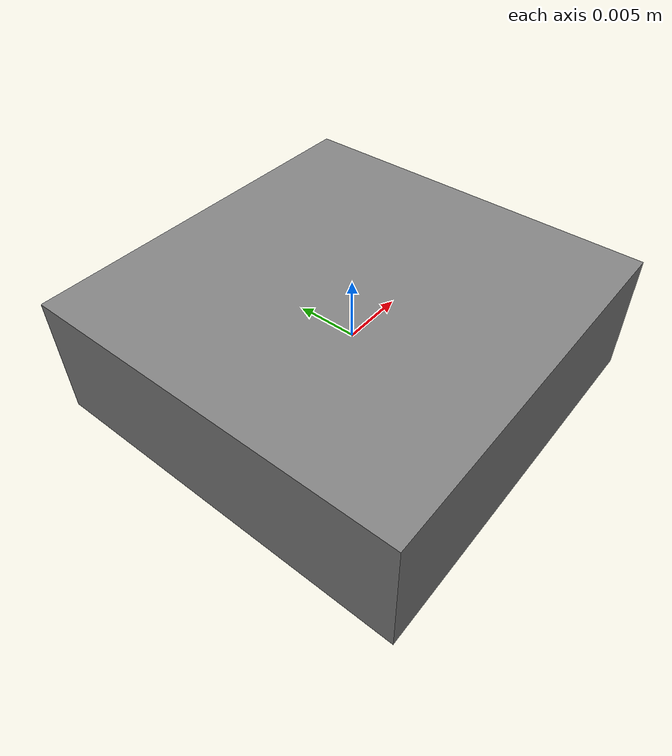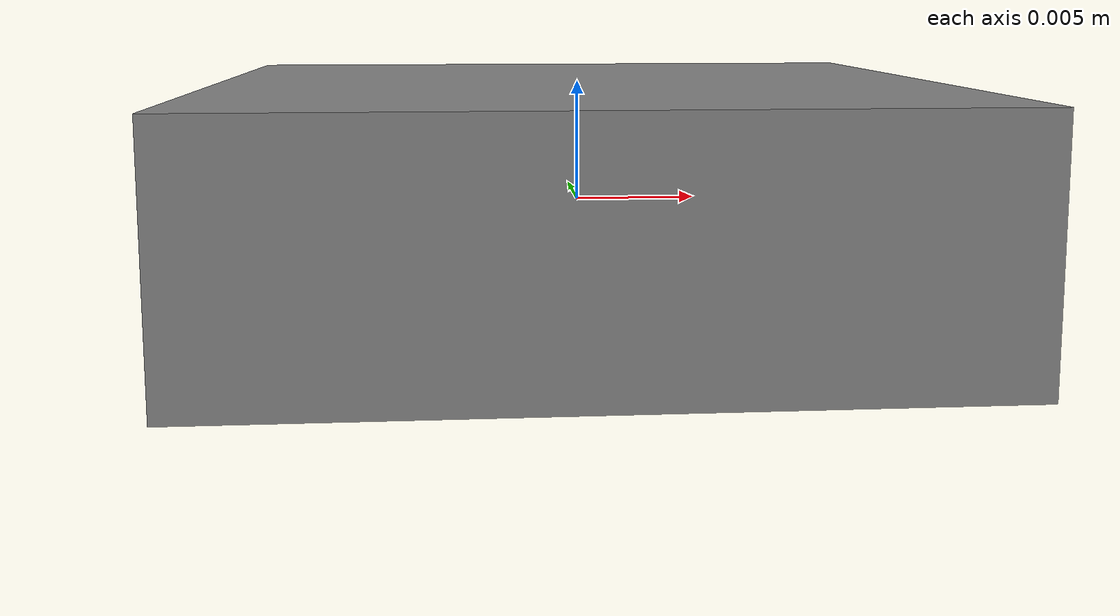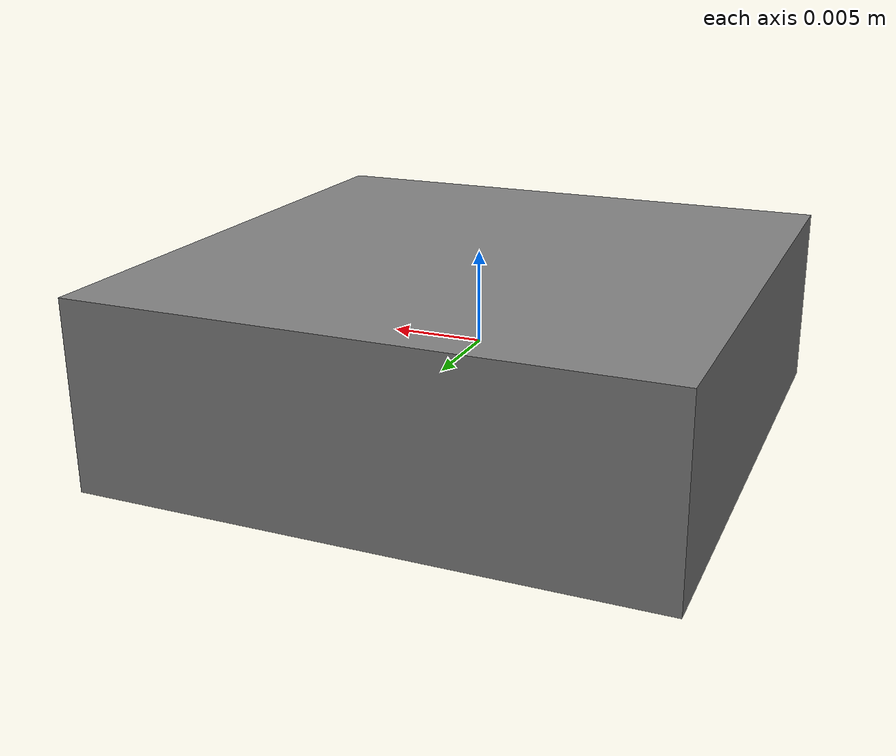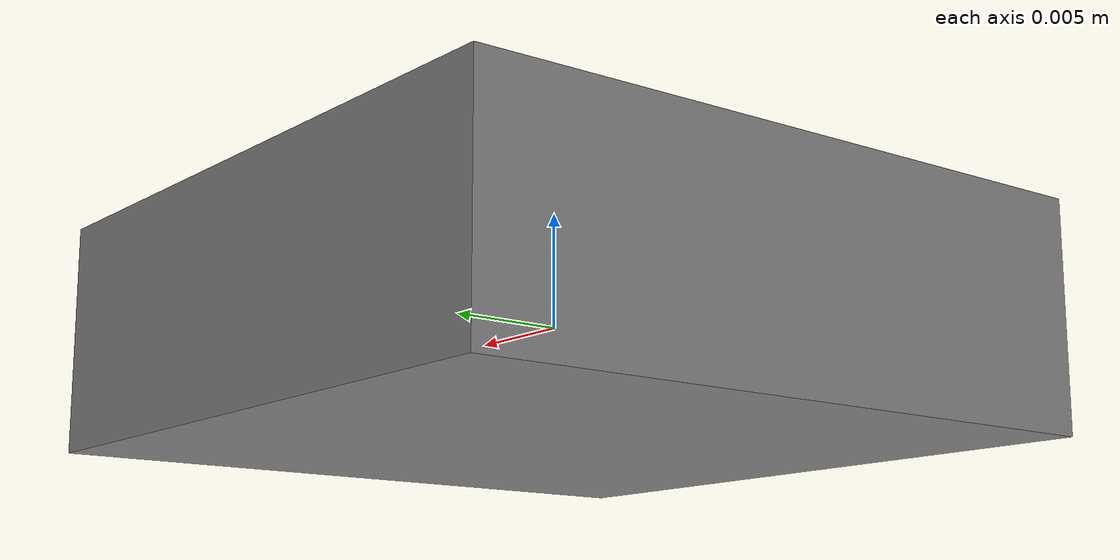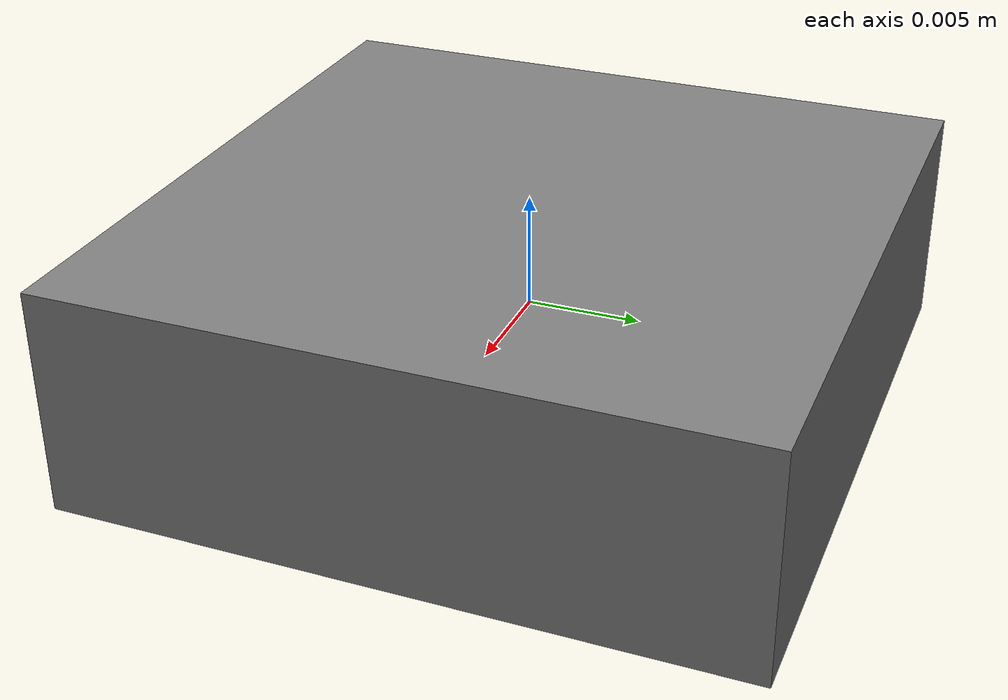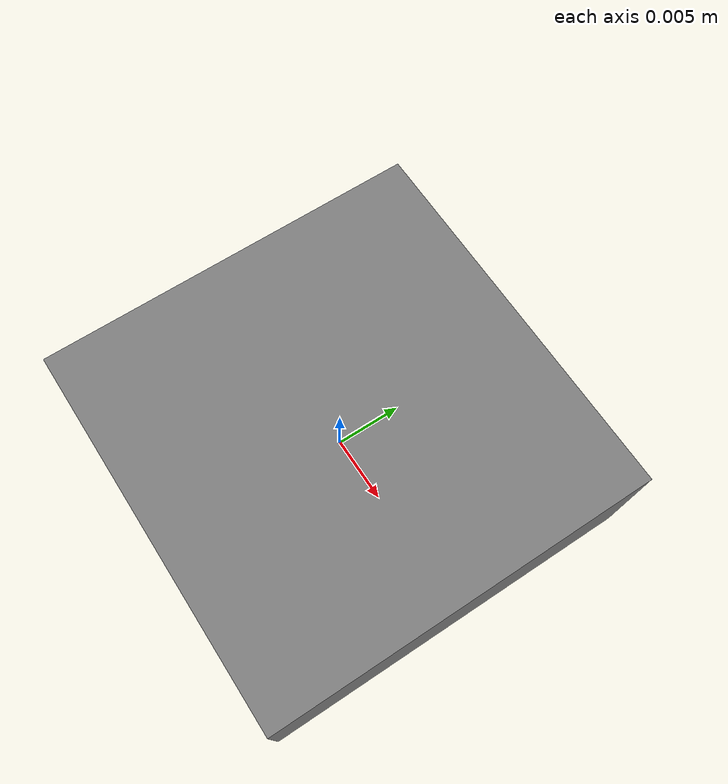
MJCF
<?xml version="1.0" encoding="utf-8"?>
<mujoco model="imu_link">
  <compiler angle="radian" meshdir="assets" autolimits="true" inertiafromgeom="false" fusestatic="false"/>
  <option timestep="0.001" integrator="implicitfast" solver="Newton" iterations="50" ls_iterations="10" gravity="0 0 -9.81"/>
  <default>
    <geom density="0"/>
    <default class="visual">
      <geom contype="0" conaffinity="0" group="2" density="0"/>
    </default>
    <default class="collision">
      <geom group="3" contype="1" conaffinity="1" condim="3" friction="1.0 0.005 0.0001" density="0"/>
    </default>
    <default class="wheel">
      <geom group="3" contype="1" conaffinity="1" condim="3" friction="1.2 0.005 0.0001" density="0"/>
    </default>
    <default class="finger_pad">
      <geom group="3" contype="1" conaffinity="1" condim="4" friction="1.0 0.005 0.0001" solref="0.02 1" solimp="0.9 0.95 0.001" density="0"/>
    </default>
    <default class="sensor_collision">
      <geom group="4" contype="1" conaffinity="1" density="0"/>
    </default>
  </default>
  <asset/>
  <worldbody>
    <body name="imu_link">
      <geom class="visual" type="box" size="0.015 0.015 0.005"/>
      <geom class="sensor_collision" type="box" size="0.015 0.015 0.005"/>
      <site name="imu_sensor_frame" size="0.002"/>
    </body>
  </worldbody>
</mujoco>
